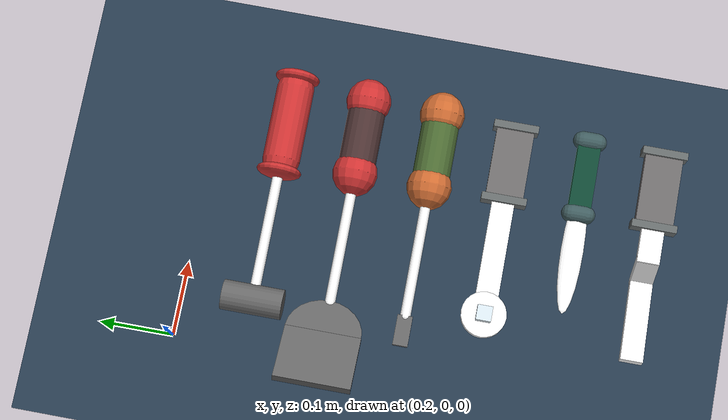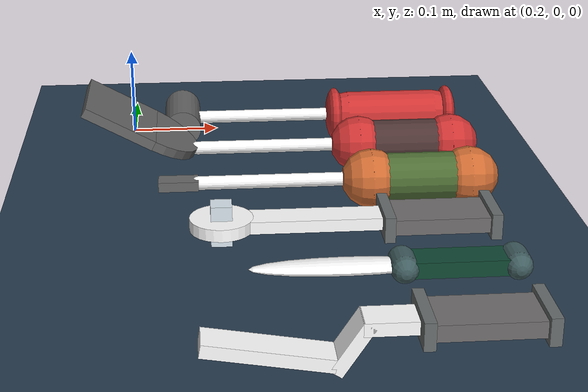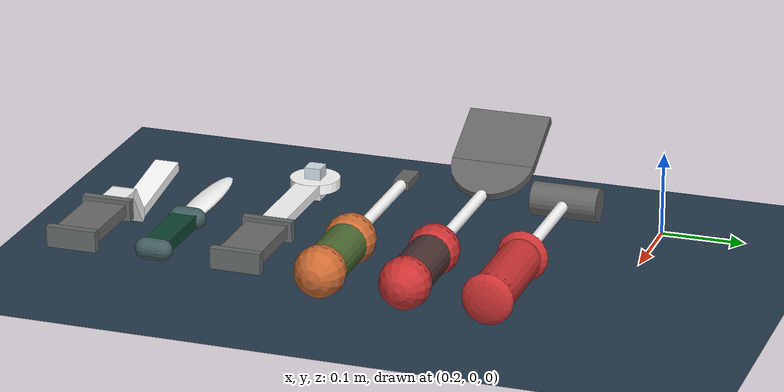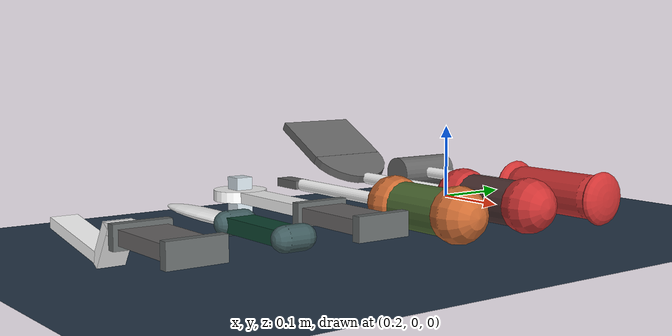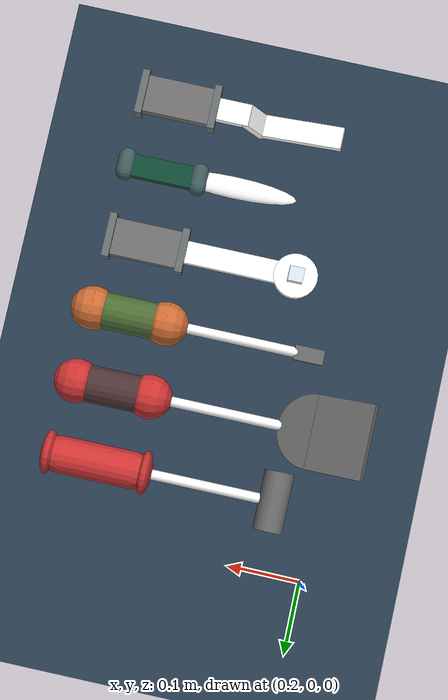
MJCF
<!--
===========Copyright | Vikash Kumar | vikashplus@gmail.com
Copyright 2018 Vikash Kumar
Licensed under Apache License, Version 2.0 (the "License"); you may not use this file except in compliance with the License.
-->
<mujoco model="house hold objects">

	<include file='../utils/basic_scene.xml'/>
	<compiler angle='radian'/>

    <worldbody>

		<body name='hammer' pos='.5 -.1 0.05'>
			<include file='include_hammer.xml'/>
			<freejoint name='Jhammer'/>
        </body>

		<body name="spatula" pos=".5 -.2 .05">
			<include file='include_spatula.xml'/>
			<freejoint name='Jspatula'/>
        </body>

		<body name="screwDriver" pos=".5 -.3 .05">
			<include file='include_screwDriver.xml'/>
			<freejoint name='JscrewDriver'/>
        </body>

		<body name="ratchet" pos=".5 -.4 .05">
			<include file='include_ratchet.xml'/>
			<freejoint name='Jratchet'/>
        </body>

		<body name="knife" pos=".5 -.5 .05">
			<include file='include_knife.xml'/>
			<freejoint name='Jknife'/>
        </body>

		<body name="turner" pos=".5 -.6 .05">
			<include file='include_turner.xml'/>
			<freejoint name='Jturner'/>
        </body>

	</worldbody>
</mujoco>

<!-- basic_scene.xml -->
<mujocoinclude>

    <visual>
        <quality shadowsize="4048"/>
    </visual>

    <asset>
        <texture name="skybox" type="skybox" builtin="gradient" rgb1=".08 .09 .10" rgb2="0 0 0"
               width="800" height="800" mark="random" markrgb=".8 .8 .8"/>
        <texture name="texplane" type="2d" builtin="checker" rgb1=".2 .3 .4" rgb2=".1 0.15 0.2" width="512" height="512" markrgb='.1 .1 .1' mark='random' random='.05'/>
        <material name='MatPlane' reflectance='0.05' texture="texplane" texrepeat="1 1" texuniform="true"/>
    </asset>

    <worldbody>
        <light directional='true' diffuse='.8 .8 .8' specular='0.3 0.3 0.3' pos='-1 -1 1' dir='1 1 -1'/>
		<geom name='floor' pos='0 0 0' size='2 2 .1' conaffinity='1' contype='1' type='plane' material="MatPlane" condim='3'/>
    </worldbody>
</mujocoinclude>

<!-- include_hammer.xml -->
<mujocoinclude>
	<geom name="handle" size="0.025 0.05" quat="0.707388 0 0.706825 0" type="capsule" condim="4" rgba="0.8 0.2 0.2 1"/>
	<geom name="handleB" size="0.030 0.030 0.01" pos=".065 0 0" quat="0.707388 0 0.706825 0" type="ellipsoid" condim="4" rgba="0.8 0.2 0.2 1"/>
	<geom name="handleT" size="0.030 0.030 0.01" pos="-.065 0 0" quat="0.707388 0 0.706825 0" type="ellipsoid" condim="4" rgba="0.8 0.2 0.2 1"/>

	<geom name="neck" size="0.007 0.085" pos="-0.14 0 0" quat="0.707388 0 0.706825 0" type="capsule" condim="4" rgba="1 1 1 1" />
	<geom name="head" size="0.02 0.04" pos="-0.24 0 0" type="cylinder" condim="4" rgba="0.4 0.4 0.4 1" euler="1.57 0 0" mass=".5"/>
	<site name="tool0" pos="-0.24 0.04 0" size="0.01" group="4" rgba="0.4 0.8 0.4 1" />
	<site name="tool1" pos="-0.24 -.04 0" size="0.01" group="4" rgba="0.4 0.8 0.4 1" />
</mujocoinclude>

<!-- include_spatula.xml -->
<mujocoinclude>
	<geom name="s_handle" size="0.025 0.05" quat="0.707388 0 0.706825 0" type="capsule" condim="4" rgba="0.3 0.2 0.2 1"/>
    <geom name="s_handleB" size="0.030 0.0005" pos=".05 0 0" quat="0.707388 0 0.706825 0" type="capsule" condim="4" rgba="0.8 0.2 0.2 1"/>
	<geom name="s_handleT" size="0.030 0.0005" pos="-.05 0 0" quat="0.707388 0 0.706825 0" type="capsule" condim="4" rgba="0.8 0.2 0.2 1"/>

	<geom name="s_neck" size="0.007 0.085" pos="-0.14 0 0" quat="0.707388 0 0.706825 0" type="capsule" condim="4" rgba="1 1 1 1" />
	<geom name="s_head" size="0.05 0.005" pos="-0.27 0 .022" type="cylinder" condim="4" rgba="0.4 0.4 0.4 1" euler="0 .5 0"/>
	<geom name="s_blade" size="0.04 0.05 0.0052" pos="-0.305 0 .041" type="box" condim="4" rgba="0.4 0.4 0.4 1" euler="0 .5 0"/>
	<site name="s_tool" pos="-0.345 0 0.06" size="0.01" group="4" rgba="0.4 0.8 0.4 1" />
</mujocoinclude>

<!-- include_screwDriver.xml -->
<mujocoinclude>
	<geom name="sd_handle" size="0.025 0.05" quat="0.707388 0 0.706825 0" type="capsule" condim="4" rgba="0.3 0.42 0.2 1"/>
    <geom name="sd_handleB" size="0.030 0.0005" pos=".05 0 0" quat="0.707388 0 0.706825 0" type="capsule" condim="4" rgba="0.8 0.42 0.2 1"/>
	<geom name="sd_handleT" size="0.030 0.0005" pos="-.05 0 0" quat="0.707388 0 0.706825 0" type="capsule" condim="4" rgba="0.8 0.42 0.2 1"/>

	<geom name="sd_neck" size="0.007 0.085" pos="-0.14 0 0" quat="0.707388 0 0.706825 0" type="capsule" condim="4" rgba="1 1 1 1" />
	<geom name="sd_head" size="0.02 0.01 0.005" pos="-0.245 0 0" type="box" condim="4" rgba="0.4 0.4 0.4 1" euler="0 0 0"/>
	<site name="sd_tool" pos="-0.265 0 0" size="0.01" group="4" rgba="0.4 0.8 0.4 1" />
</mujocoinclude>

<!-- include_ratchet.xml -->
<mujocoinclude>
	<geom name="r_handle" size="0.0075 0.025 0.05" quat="0.707388 0 0.706825 0" type="box" condim="4" rgba="0.43 0.42 0.42 1"/>
    <geom name="r_handleB" size="0.0125 0.030 0.005" pos=".05 0 0" quat="0.707388 0 0.706825 0" type="box" condim="4" rgba="0.4 0.42 0.42 1"/>
	<geom name="r_handleT" size="0.0125 0.030 0.005" pos="-.05 0 0" quat="0.707388 0 0.706825 0" type="box" condim="4" rgba="0.4 0.42 0.42 1"/>

	<geom name="r_neck" size="0.006 0.015 0.085" pos="-0.14 0 0" quat="0.707388 0 0.706825 0" type="box" condim="4" rgba="1 1 1 1" />
	<geom name="r_head" size="0.03 0.006" pos="-0.205 0 0" type="cylinder" condim="4" rgba="1 1 1 1" euler="0 0 0"/>
	<geom name="r_hex" size="0.01 0.01 0.02" pos="-0.205 0 0" type="box" condim="4" rgba=".84 .89 .92 1" euler="0 0 0"/>
	<site name="r_tool0" pos="-0.205 0 0.02" size="0.01" group="4" rgba="0.4 0.8 0.4 1" />
	<site name="r_tool1" pos="-0.205 0 -.02" size="0.01" group="4" rgba="0.4 0.8 0.4 1" />
</mujocoinclude>

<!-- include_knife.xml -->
<mujocoinclude>
	<geom name="k_handle" size="0.0075 0.015 0.050" quat="0.707388 0 0.706825 0" type="box" condim="4" rgba="0.06 0.28 0.2 1"/>
	<geom name="k_handleT" size="0.0125 0.010" pos="-.05 0 0" euler="1.57 0 0" type="capsule" condim="4" rgba="0.25 0.36 0.37 1"/>
    <geom name="k_handleB" size="0.0125 0.010" pos=".05 0 0" euler="1.57 0 0" type="capsule" condim="4" rgba="0.25 0.36 0.37 1"/>

	<geom name="k_neck" size="0.006 0.015 0.085" pos="-0.10 0 0" quat="0.707388 0 0.706825 0" type="ellipsoid" condim="4" rgba="1 1 1 1" />
	<site name="k_tool" pos="-0.185 0 0" size="0.01" group="4" rgba="0.4 0.8 0.4 1" />
</mujocoinclude>

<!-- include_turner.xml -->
<mujocoinclude>
	<geom name="t_handle" size="0.0075 0.025 0.05" quat="0.707388 0 0.706825 0" type="box" condim="4" rgba="0.43 0.42 0.42 1"/>
    <geom name="t_handleB" size="0.0125 0.030 0.005" pos=".05 0 0" quat="0.707388 0 0.706825 0" type="box" condim="4" rgba="0.4 0.42 0.42 1"/>
	<geom name="t_handleT" size="0.0125 0.030 0.005" pos="-.05 0 0" quat="0.707388 0 0.706825 0" type="box" condim="4" rgba="0.4 0.42 0.42 1"/>

	<geom name="t_lip" size="0.006 0.015 0.025" pos="-0.075 0 0" quat="0.707388 0 0.706825 0" type="box" condim="4" rgba="1 1 1 1" />
	<geom name="t_neck" size="0.006 0.015 0.025" pos="-0.108 0 -.018" euler="0 .57 0" type="box" condim="4" rgba="1 1 1 1" />
	<geom name="t_head" size="0.006 0.015 0.055" pos="-0.175 0 -.0225" euler="0 -1.4 0" type="box" condim="4" rgba="1 1 1 1" />
	<site name="t_tool0" pos="-0.205 0 0.02" size="0.01" group="4" rgba="0.4 0.8 0.4 1" />
</mujocoinclude>
